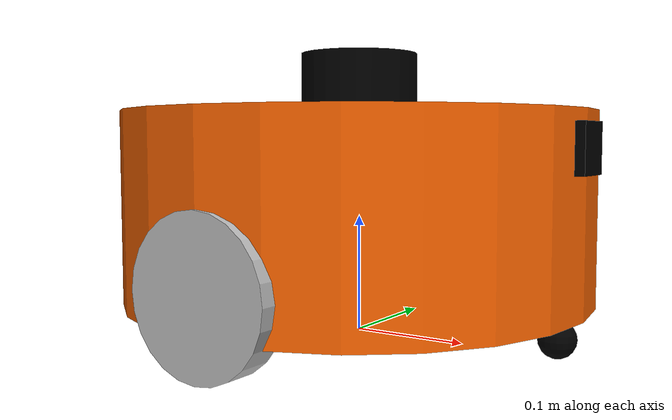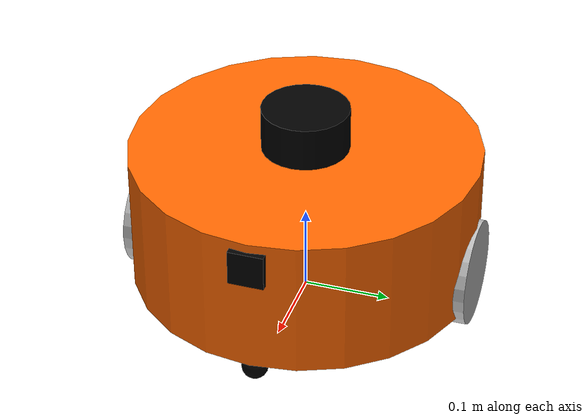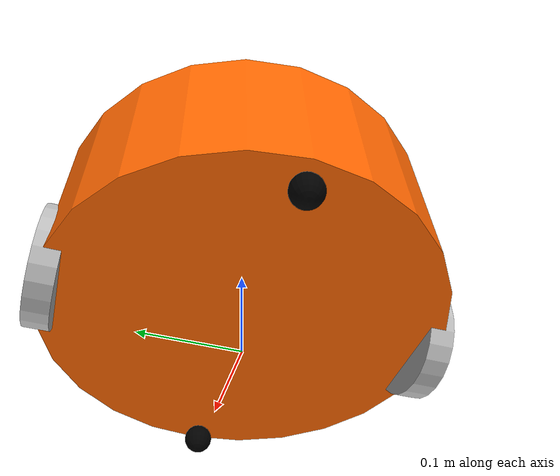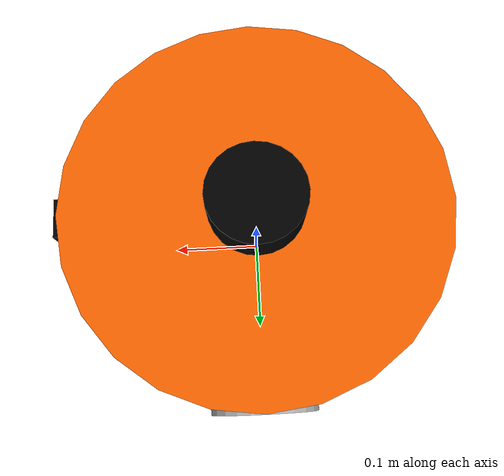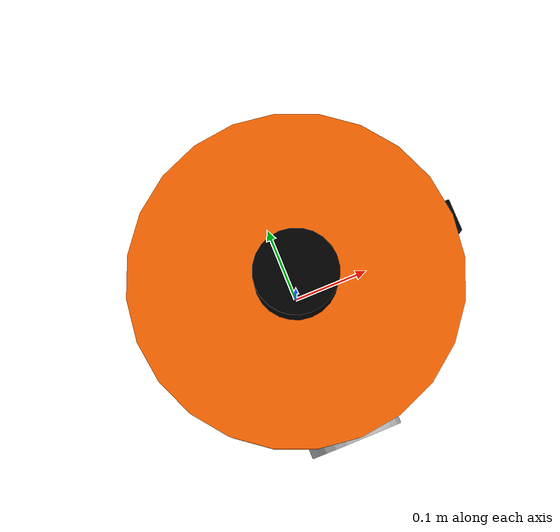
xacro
<?xml version="1.0"?>
<robot name="arm" xmlns:xacro="http://www.ros.org/wiki/xacro">
    <xacro:include filename="$(find mbot_description)/urdf/xacro/mbot_base.xacro" />
    <xacro:include filename="$(find mbot_description)/urdf/xacro/sensors/cameral.xacro" />
    <xacro:include filename="$(find mbot_description)/urdf/xacro/sensors/lidar.xacro" />
    <mbot_base/>

    <xacro:usb_camera prefix="camera"/>
    <xacro:property name="camera_offset_x" value="0.20" />
    <xacro:property name="camera_offset_y" value="0" />
    <xacro:property name="camera_offset_z" value="0.05" />
   <joint name="camera_joint" type="fixed">
       <origin xyz="${camera_offset_x} ${camera_offset_y} ${camera_offset_z}" rpy="0 0 0" />
       <parent link="base_link"/>
       <child link="camera_link"/>
   </joint>

   <xacro:rplidar prefix="laser"/>
   <xacro:property name="lidar_offset_x" value="0" />
   <xacro:property name="lidar_offset_y" value="0" />
   <xacro:property name="lidar_offset_z" value="0.105" />
   <joint name="lidar_joint" type="fixed">
      <origin xyz="${lidar_offset_x} ${lidar_offset_y} ${lidar_offset_z}" rpy="0 0 0" />
      <parent link="base_link"/>
      <child link="laser_link"/>
   </joint>
</robot>

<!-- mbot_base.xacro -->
<robot name="mbot" xmlns:xacro="http://www.ros.org/wiki/xacro">
    <!-- PROPERTY LIST -->
    <xacro:property name="M_PI" value="3.1415926"/>
    <xacro:property name="base_radius" value="0.20"/>
    <xacro:property name="base_length" value="0.16"/>

    <xacro:property name="wheel_radius" value="0.06"/>
    <xacro:property name="wheel_length" value="0.025"/>
    <xacro:property name="wheel_joint_y" value="0.19"/>
    <xacro:property name="wheel_joint_z" value="0.05"/>

    <xacro:property name="caster_radius" value="0.015"/> <!-- wheel_radius - ( base_length/2 - wheel_joint_z) -->
    <xacro:property name="caster_joint_x" value="0.18"/>

    <!-- Defining the colors used in this robot -->
    <material name="yellow">
        <color rgba="1 0.4 0 1"/>
    </material>
    <material name="black">
        <color rgba="0 0 0 0.95"/>
    </material>
    <material name="gray">
        <color rgba="0.75 0.75 0.75 1"/>
    </material>

    <!-- Macro for robot wheel -->
    <xacro:macro name="wheel" params="prefix reflect">
        <joint name="${prefix}_wheel_joint" type="continuous">
            <origin xyz="0 ${reflect*wheel_joint_y} ${-wheel_joint_z}" rpy="0 0 0"/>
            <parent link="base_link"/>
            <child link="${prefix}_wheel_link"/>
            <axis xyz="0 1 0"/>
        </joint>

        <link name="${prefix}_wheel_link">
            <visual>
                <origin xyz="0 0 0" rpy="${M_PI/2} 0 0" />
                <geometry>
                    <cylinder radius="${wheel_radius}" length = "${wheel_length}"/>
                </geometry>
                <material name="gray" />
            </visual>
        </link>
    </xacro:macro>

    <!-- Macro for robot caster -->
    <xacro:macro name="caster" params="prefix reflect">
        <joint name="${prefix}_caster_joint" type="continuous">
            <origin xyz="${reflect*caster_joint_x} 0 ${-(base_length/2 + caster_radius)}" rpy="0 0 0"/>
            <parent link="base_link"/>
            <child link="${prefix}_caster_link"/>
            <axis xyz="0 1 0"/>
        </joint>

        <link name="${prefix}_caster_link">
            <visual>
                <origin xyz="0 0 0" rpy="0 0 0"/>
                <geometry>
                    <sphere radius="${caster_radius}" />
                </geometry>
                <material name="black" />
            </visual>
        </link>
    </xacro:macro>

    <xacro:macro name="mbot_base">
        <link name="base_footprint">
            <visual>
                <origin xyz="0 0 0" rpy="0 0 0" />
                <geometry>
                    <box size="0.001 0.001 0.001" />
                </geometry>
            </visual>
        </link>

        <joint name="base_footprint_joint" type="fixed">
            <origin xyz="0 0 ${base_length/2 + caster_radius*2}" rpy="0 0 0" />
            <parent link="base_footprint"/>
            <child link="base_link" />
        </joint>

        <link name="base_link">
            <visual>
                <origin xyz=" 0 0 0" rpy="0 0 0" />
                <geometry>
                    <cylinder length="${base_length}" radius="${base_radius}"/>
                </geometry>
                <material name="yellow" />
            </visual>
        </link>

        <wheel prefix="left" reflect="-1"/>
        <wheel prefix="right" reflect="1"/>

        <caster prefix="front" reflect="-1"/>
        <caster prefix="back" reflect="1"/>
    </xacro:macro>
</robot>

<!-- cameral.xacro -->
<robot xmlns:xacro="http://www.ros.org/wiki/xacro" name="camera">

    <xacro:macro name="usb_camera" params="prefix:=camera">
        <link name="${prefix}_link">
            <visual>
                <origin xyz=" 0 0 0 " rpy="0 0 0" />
                <geometry>
                    <box size="0.01 0.04 0.04" />
                </geometry>
                <material name="black"/>
            </visual>
        </link>
        <gazebo reference="${prefix}_link">
            <material>Gazebo/Black</material>
            <sensor type="camera" name="camera_node">
                <update_rate>30.0</update_rate>
                <camera name="head">
                    <horizontal_fov>1.3962634</horizontal_fov>
                    <image>
                        <width>640</width>
                        <height>480</height>
                        <format>R8G8B8</format>
                    </image>
                    <clip>
                        <near>0.02</near>
                        <far>300</far>
                    </clip>
                    <noise>
                        <type>gaussian</type>
                        <mean>0.0</mean>
                        <stddev>0.007</stddev>
                    </noise>
                </camera>
                <plugin name="gazebo_camera" filename="libgazebo_ros_camera.so">
                    <alwaysOn>true</alwaysOn>
                    <updateRate>0.0</updateRate>
                    <cameraName>/camera</cameraName>
                    <imageTopicName>image_raw</imageTopicName>
                    <cameraInfoTopicName>camera_info</cameraInfoTopicName>
                    <frameName>camera_link</frameName>
                    <hackBaseline>0.07</hackBaseline>
                    <distortionK1>0.0</distortionK1>
                    <distortionK2>0.0</distortionK2>
                    <distortionK3>0.0</distortionK3>
                    <distortionT1>0.0</distortionT1>
                    <distortionT2>0.0</distortionT2>
                </plugin>
            </sensor>
        </gazebo>

    </xacro:macro>

</robot>

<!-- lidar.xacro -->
<robot xmlns:xacro="http://www.ros.org/wiki/xacro" name="laser">

  <xacro:macro name="rplidar" params="prefix:=laser">
    <link name="${prefix}_link">
      <visual>
        <origin xyz=" 0 0 0 " rpy="0 0 0" />
        <geometry>
          <cylinder length="0.05" radius="0.05"/>
        </geometry>
        <material name="black"/>
      </visual>
    </link>
  </xacro:macro>

</robot>
